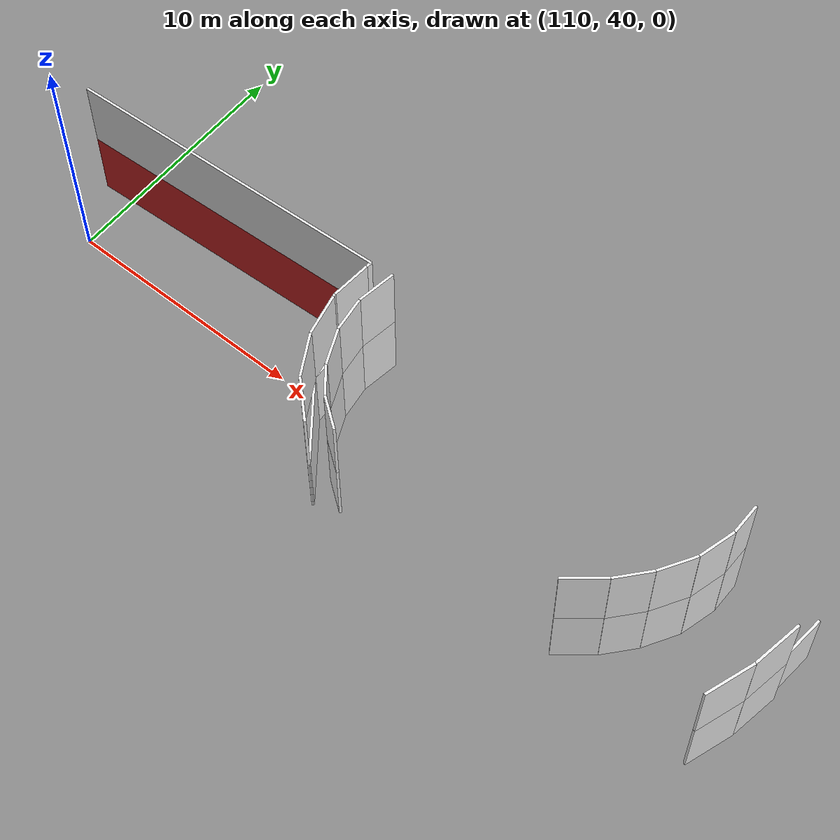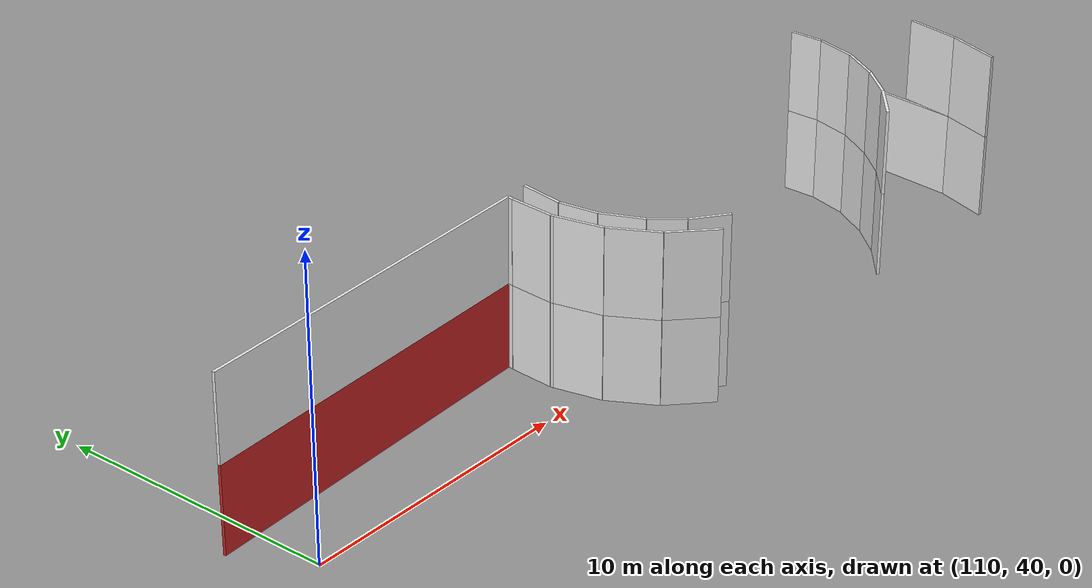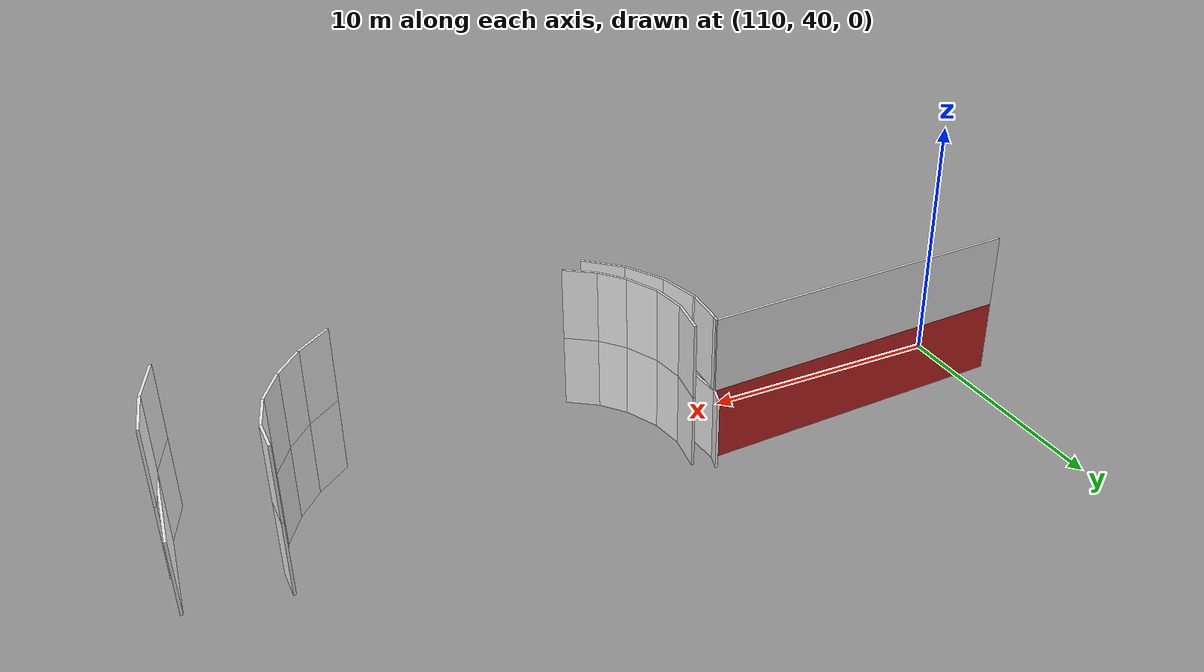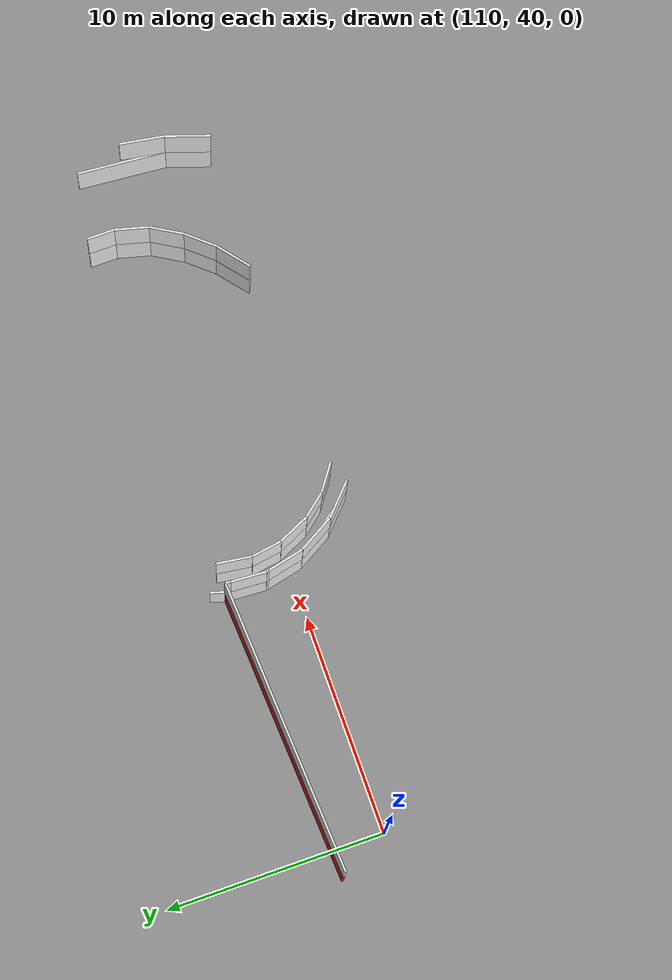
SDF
<sdf version="1.6">
 <world name="default">
  <model name="wall_115.3_42.8_1.5">
   <static>true</static>
   <pose>115.2949999999837 42.75499999988824 1.5 0 0 0.0504469889047384</pose>
   <link name="link">
    <visual name="visual">
     <geometry><box><size>13.286903326222951 0.1 3</size></box></geometry>
     <material>
      <script><uri>file://media/materials/scripts/gazebo.material</uri><name>Gazebo/Red</name></script>
     </material>
    </visual>
    <collision name="collision"><geometry><box><size>13.286903326222951 0.1 3</size></box></geometry></collision>
   </link>
  </model>
  <model name="wall_122.7_42.4_1.5">
   <static>true</static>
   <pose>122.73000000001048 42.40999999991618 1.5 0 0 -1.710898051205598</pose>
   <link name="link">
    <visual name="visual">
     <geometry><box><size>1.5754364475241969 0.1 3</size></box></geometry>
     <material>
      <script><uri>file://media/materials/scripts/gazebo.material</uri><name>Gazebo/White</name></script>
     </material>
    </visual>
    <collision name="collision"><geometry><box><size>1.5754364475241969 0.1 3</size></box></geometry></collision>
   </link>
  </model>
  <model name="wall_122.7_40.9_1.5">
   <static>true</static>
   <pose>122.72000000000116 40.94499999983236 1.5 0 0 -1.4258349304067353</pose>
   <link name="link">
    <visual name="visual">
     <geometry><box><size>1.384521578131188 0.1 3</size></box></geometry>
     <material>
      <script><uri>file://media/materials/scripts/gazebo.material</uri><name>Gazebo/White</name></script>
     </material>
    </visual>
    <collision name="collision"><geometry><box><size>1.384521578131188 0.1 3</size></box></geometry></collision>
   </link>
  </model>
  <model name="wall_123.1_39.6_1.5">
   <static>true</static>
   <pose>123.13000000000466 39.574999999953434 1.5 0 0 -1.1458199052710913</pose>
   <link name="link">
    <visual name="visual">
     <geometry><box><size>1.5037619489216145 0.1 3</size></box></geometry>
     <material>
      <script><uri>file://media/materials/scripts/gazebo.material</uri><name>Gazebo/White</name></script>
     </material>
    </visual>
    <collision name="collision"><geometry><box><size>1.5037619489216145 0.1 3</size></box></geometry></collision>
   </link>
  </model>
  <model name="wall_123.8_38.4_1.5">
   <static>true</static>
   <pose>123.8299999999872 38.41000000014901 1.5 0 0 -0.8884797719201485</pose>
   <link name="link">
    <visual name="visual">
     <geometry><box><size>1.2369316876372989 0.1 3</size></box></geometry>
     <material>
      <script><uri>file://media/materials/scripts/gazebo.material</uri><name>Gazebo/White</name></script>
     </material>
    </visual>
    <collision name="collision"><geometry><box><size>1.2369316876372989 0.1 3</size></box></geometry></collision>
   </link>
  </model>
  <model name="wall_124.8_37.5_1.5">
   <static>true</static>
   <pose>124.77999999999884 37.52000000001863 1.5 0 0 -0.6319742419690464</pose>
   <link name="link">
    <visual name="visual">
     <geometry><box><size>1.388092216176113 0.1 3</size></box></geometry>
     <material>
      <script><uri>file://media/materials/scripts/gazebo.material</uri><name>Gazebo/White</name></script>
     </material>
    </visual>
    <collision name="collision"><geometry><box><size>1.388092216176113 0.1 3</size></box></geometry></collision>
   </link>
  </model>
  <model name="wall_135.2_38.0_1.5">
   <static>true</static>
   <pose>135.15499999999884 38.03499999991618 1.5 0 0 0.6848975642669308</pose>
   <link name="link">
    <visual name="visual">
     <geometry><box><size>1.6914490827793647 0.1 3</size></box></geometry>
     <material>
      <script><uri>file://media/materials/scripts/gazebo.material</uri><name>Gazebo/White</name></script>
     </material>
    </visual>
    <collision name="collision"><geometry><box><size>1.6914490827793647 0.1 3</size></box></geometry></collision>
   </link>
  </model>
  <model name="wall_136.3_39.1_1.5">
   <static>true</static>
   <pose>136.2950000000128 39.13500000000931 1.5 0 0 0.8614417228159299</pose>
   <link name="link">
    <visual name="visual">
     <geometry><box><size>1.4892279882068225 0.1 3</size></box></geometry>
     <material>
      <script><uri>file://media/materials/scripts/gazebo.material</uri><name>Gazebo/White</name></script>
     </material>
    </visual>
    <collision name="collision"><geometry><box><size>1.4892279882068225 0.1 3</size></box></geometry></collision>
   </link>
  </model>
  <model name="wall_137.2_40.4_1.5">
   <static>true</static>
   <pose>137.1700000000128 40.360000000102445 1.5 0 0 1.0370881351170083</pose>
   <link name="link">
    <visual name="visual">
     <geometry><box><size>1.5332318805419543 0.1 3</size></box></geometry>
     <material>
      <script><uri>file://media/materials/scripts/gazebo.material</uri><name>Gazebo/White</name></script>
     </material>
    </visual>
    <collision name="collision"><geometry><box><size>1.5332318805419543 0.1 3</size></box></geometry></collision>
   </link>
  </model>
  <model name="wall_137.8_41.7_1.5">
   <static>true</static>
   <pose>137.75500000000466 41.74500000011176 1.5 0 0 1.3080489362155228</pose>
   <link name="link">
    <visual name="visual">
     <geometry><box><size>1.501532550613227 0.1 3</size></box></geometry>
     <material>
      <script><uri>file://media/materials/scripts/gazebo.material</uri><name>Gazebo/White</name></script>
     </material>
    </visual>
    <collision name="collision"><geometry><box><size>1.501532550613227 0.1 3</size></box></geometry></collision>
   </link>
  </model>
  <model name="wall_138.0_43.1_1.5">
   <static>true</static>
   <pose>137.95000000001164 43.08500000019558 1.5 0 0 1.5707963267948966</pose>
   <link name="link">
    <visual name="visual">
     <geometry><box><size>1.2299999999813735 0.1 3</size></box></geometry>
     <material>
      <script><uri>file://media/materials/scripts/gazebo.material</uri><name>Gazebo/White</name></script>
     </material>
    </visual>
    <collision name="collision"><geometry><box><size>1.2299999999813735 0.1 3</size></box></geometry></collision>
   </link>
  </model>
  <model name="wall_122.0_43.4_1.5">
   <static>true</static>
   <pose>122.02499999999418 43.40999999991618 1.5 0 0 -1.8593836886367348</pose>
   <link name="link">
    <visual name="visual">
     <geometry><box><size>0.6676076693446367 0.1 3</size></box></geometry>
     <material>
      <script><uri>file://media/materials/scripts/gazebo.material</uri><name>Gazebo/White</name></script>
     </material>
    </visual>
    <collision name="collision"><geometry><box><size>0.6676076693446367 0.1 3</size></box></geometry></collision>
   </link>
  </model>
  <model name="wall_121.9_43.0_1.5">
   <static>true</static>
   <pose>121.91500000000815 42.97999999998137 1.5 0 0 -1.706324040804011</pose>
   <link name="link">
    <visual name="visual">
     <geometry><box><size>0.22203603284927648 0.1 3</size></box></geometry>
     <material>
      <script><uri>file://media/materials/scripts/gazebo.material</uri><name>Gazebo/White</name></script>
     </material>
    </visual>
    <collision name="collision"><geometry><box><size>0.22203603284927648 0.1 3</size></box></geometry></collision>
   </link>
  </model>
  <model name="wall_121.9_42.1_1.5">
   <static>true</static>
   <pose>121.85000000000582 42.07000000006519 1.5 0 0 -1.6332151368089731</pose>
   <link name="link">
    <visual name="visual">
     <geometry><box><size>1.6031219542832693 0.1 3</size></box></geometry>
     <material>
      <script><uri>file://media/materials/scripts/gazebo.material</uri><name>Gazebo/White</name></script>
     </material>
    </visual>
    <collision name="collision"><geometry><box><size>1.6031219542832693 0.1 3</size></box></geometry></collision>
   </link>
  </model>
  <model name="wall_121.8_41.2_1.5">
   <static>true</static>
   <pose>121.80999999999767 41.21999999997206 1.5 0 0 -1.373400766945016</pose>
   <link name="link">
    <visual name="visual">
     <geometry><box><size>0.10198039036683233 0.1 3</size></box></geometry>
     <material>
      <script><uri>file://media/materials/scripts/gazebo.material</uri><name>Gazebo/White</name></script>
     </material>
    </visual>
    <collision name="collision"><geometry><box><size>0.10198039036683233 0.1 3</size></box></geometry></collision>
   </link>
  </model>
  <model name="wall_122.0_40.3_1.5">
   <static>true</static>
   <pose>122.00500000000466 40.34499999997206 1.5 0 0 -1.350203072831387</pose>
   <link name="link">
    <visual name="visual">
     <geometry><box><size>1.6909760494132429 0.1 3</size></box></geometry>
     <material>
      <script><uri>file://media/materials/scripts/gazebo.material</uri><name>Gazebo/White</name></script>
     </material>
    </visual>
    <collision name="collision"><geometry><box><size>1.6909760494132429 0.1 3</size></box></geometry></collision>
   </link>
  </model>
  <model name="wall_122.6_38.7_1.5">
   <static>true</static>
   <pose>122.63000000000466 38.73999999999069 1.5 0 0 -1.057190322085212</pose>
   <link name="link">
    <visual name="visual">
     <geometry><box><size>1.7910890542300064 0.1 3</size></box></geometry>
     <material>
      <script><uri>file://media/materials/scripts/gazebo.material</uri><name>Gazebo/White</name></script>
     </material>
    </visual>
    <collision name="collision"><geometry><box><size>1.7910890542300064 0.1 3</size></box></geometry></collision>
   </link>
  </model>
  <model name="wall_123.7_37.3_1.5">
   <static>true</static>
   <pose>123.72000000000116 37.34000000008382 1.5 0 0 -0.7617805082994406</pose>
   <link name="link">
    <visual name="visual">
     <geometry><box><size>1.7965522534480356 0.1 3</size></box></geometry>
     <material>
      <script><uri>file://media/materials/scripts/gazebo.material</uri><name>Gazebo/White</name></script>
     </material>
    </visual>
    <collision name="collision"><geometry><box><size>1.7965522534480356 0.1 3</size></box></geometry></collision>
   </link>
  </model>
  <model name="wall_140.8_38.1_1.5">
   <static>true</static>
   <pose>140.77999999999884 38.13500000000931 1.5 0 0 1.244291450100456</pose>
   <link name="link">
    <visual name="visual">
     <geometry><box><size>1.9954197554490212 0.1 3</size></box></geometry>
     <material>
      <script><uri>file://media/materials/scripts/gazebo.material</uri><name>Gazebo/White</name></script>
     </material>
    </visual>
    <collision name="collision"><geometry><box><size>1.9954197554490212 0.1 3</size></box></geometry></collision>
   </link>
  </model>
  <model name="wall_141.3_40.1_1.5">
   <static>true</static>
   <pose>141.26499999998487 40.06000000005588 1.5 0 0 1.4039933911592954</pose>
   <link name="link">
    <visual name="visual">
     <geometry><box><size>1.9875864760721043 0.1 3</size></box></geometry>
     <material>
      <script><uri>file://media/materials/scripts/gazebo.material</uri><name>Gazebo/White</name></script>
     </material>
    </visual>
    <collision name="collision"><geometry><box><size>1.9875864760721043 0.1 3</size></box></geometry></collision>
   </link>
  </model>
  <model name="wall_141.3_41.1_1.5">
   <static>true</static>
   <pose>141.27499999999418 41.05499999993481 1.5 0 0 -1.659173112954737</pose>
   <link name="link">
    <visual name="visual">
     <geometry><box><size>3.9654760115044465 0.1 3</size></box></geometry>
     <material>
      <script><uri>file://media/materials/scripts/gazebo.material</uri><name>Gazebo/White</name></script>
     </material>
    </visual>
    <collision name="collision"><geometry><box><size>3.9654760115044465 0.1 3</size></box></geometry></collision>
   </link>
  </model>
  <model name="wall_123.3_38.1_1.5">
   <static>true</static>
   <pose>123.27999999999884 38.12000000011176 1.5 0 0 2.232333811009223</pose>
   <link name="link">
    <visual name="visual">
     <geometry><box><size>3.548577179508213 0.1 3</size></box></geometry>
     <material>
      <script><uri>file://media/materials/scripts/gazebo.material</uri><name>Gazebo/White</name></script>
     </material>
    </visual>
    <collision name="collision"><geometry><box><size>3.548577179508213 0.1 3</size></box></geometry></collision>
   </link>
  </model>
  <model name="wall_122.1_41.3_1.5">
   <static>true</static>
   <pose>122.05999999999767 41.30499999993481 1.5 0 0 1.6434971027864747</pose>
   <link name="link">
    <visual name="visual">
     <geometry><box><size>3.5794552656525696 0.1 3</size></box></geometry>
     <material>
      <script><uri>file://media/materials/scripts/gazebo.material</uri><name>Gazebo/White</name></script>
     </material>
    </visual>
    <collision name="collision"><geometry><box><size>3.5794552656525696 0.1 3</size></box></geometry></collision>
   </link>
  </model>
  <model name="wall_122.7_42.4_4.5">
   <static>true</static>
   <pose>122.73000000001048 42.40999999991618 4.5 0 0 -1.710898051205598</pose>
   <link name="link">
    <visual name="visual">
     <geometry><box><size>1.5754364475241969 0.1 3</size></box></geometry>
     <material>
      <script><uri>file://media/materials/scripts/gazebo.material</uri><name>Gazebo/White</name></script>
     </material>
    </visual>
    <collision name="collision"><geometry><box><size>1.5754364475241969 0.1 3</size></box></geometry></collision>
   </link>
  </model>
  <model name="wall_122.7_40.9_4.5">
   <static>true</static>
   <pose>122.72000000000116 40.94499999983236 4.5 0 0 -1.4258349304067353</pose>
   <link name="link">
    <visual name="visual">
     <geometry><box><size>1.384521578131188 0.1 3</size></box></geometry>
     <material>
      <script><uri>file://media/materials/scripts/gazebo.material</uri><name>Gazebo/White</name></script>
     </material>
    </visual>
    <collision name="collision"><geometry><box><size>1.384521578131188 0.1 3</size></box></geometry></collision>
   </link>
  </model>
  <model name="wall_123.1_39.6_4.5">
   <static>true</static>
   <pose>123.13000000000466 39.574999999953434 4.5 0 0 -1.1458199052710913</pose>
   <link name="link">
    <visual name="visual">
     <geometry><box><size>1.5037619489216145 0.1 3</size></box></geometry>
     <material>
      <script><uri>file://media/materials/scripts/gazebo.material</uri><name>Gazebo/White</name></script>
     </material>
    </visual>
    <collision name="collision"><geometry><box><size>1.5037619489216145 0.1 3</size></box></geometry></collision>
   </link>
  </model>
  <model name="wall_123.8_38.4_4.5">
   <static>true</static>
   <pose>123.8299999999872 38.41000000014901 4.5 0 0 -0.8884797719201485</pose>
   <link name="link">
    <visual name="visual">
     <geometry><box><size>1.2369316876372989 0.1 3</size></box></geometry>
     <material>
      <script><uri>file://media/materials/scripts/gazebo.material</uri><name>Gazebo/White</name></script>
     </material>
    </visual>
    <collision name="collision"><geometry><box><size>1.2369316876372989 0.1 3</size></box></geometry></collision>
   </link>
  </model>
  <model name="wall_124.8_37.5_4.5">
   <static>true</static>
   <pose>124.77999999999884 37.52000000001863 4.5 0 0 -0.6319742419690464</pose>
   <link name="link">
    <visual name="visual">
     <geometry><box><size>1.388092216176113 0.1 3</size></box></geometry>
     <material>
      <script><uri>file://media/materials/scripts/gazebo.material</uri><name>Gazebo/White</name></script>
     </material>
    </visual>
    <collision name="collision"><geometry><box><size>1.388092216176113 0.1 3</size></box></geometry></collision>
   </link>
  </model>
  <model name="wall_135.2_38.0_4.5">
   <static>true</static>
   <pose>135.15499999999884 38.03499999991618 4.5 0 0 0.6848975642669308</pose>
   <link name="link">
    <visual name="visual">
     <geometry><box><size>1.6914490827793647 0.1 3</size></box></geometry>
     <material>
      <script><uri>file://media/materials/scripts/gazebo.material</uri><name>Gazebo/White</name></script>
     </material>
    </visual>
    <collision name="collision"><geometry><box><size>1.6914490827793647 0.1 3</size></box></geometry></collision>
   </link>
  </model>
  <model name="wall_136.3_39.1_4.5">
   <static>true</static>
   <pose>136.2950000000128 39.13500000000931 4.5 0 0 0.8614417228159299</pose>
   <link name="link">
    <visual name="visual">
     <geometry><box><size>1.4892279882068225 0.1 3</size></box></geometry>
     <material>
      <script><uri>file://media/materials/scripts/gazebo.material</uri><name>Gazebo/White</name></script>
     </material>
    </visual>
    <collision name="collision"><geometry><box><size>1.4892279882068225 0.1 3</size></box></geometry></collision>
   </link>
  </model>
  <model name="wall_137.2_40.4_4.5">
   <static>true</static>
   <pose>137.1700000000128 40.360000000102445 4.5 0 0 1.0370881351170083</pose>
   <link name="link">
    <visual name="visual">
     <geometry><box><size>1.5332318805419543 0.1 3</size></box></geometry>
     <material>
      <script><uri>file://media/materials/scripts/gazebo.material</uri><name>Gazebo/White</name></script>
     </material>
    </visual>
    <collision name="collision"><geometry><box><size>1.5332318805419543 0.1 3</size></box></geometry></collision>
   </link>
  </model>
  <model name="wall_137.8_41.7_4.5">
   <static>true</static>
   <pose>137.75500000000466 41.74500000011176 4.5 0 0 1.3080489362155228</pose>
   <link name="link">
    <visual name="visual">
     <geometry><box><size>1.501532550613227 0.1 3</size></box></geometry>
     <material>
      <script><uri>file://media/materials/scripts/gazebo.material</uri><name>Gazebo/White</name></script>
     </material>
    </visual>
    <collision name="collision"><geometry><box><size>1.501532550613227 0.1 3</size></box></geometry></collision>
   </link>
  </model>
  <model name="wall_138.0_43.1_4.5">
   <static>true</static>
   <pose>137.95000000001164 43.08500000019558 4.5 0 0 1.5707963267948966</pose>
   <link name="link">
    <visual name="visual">
     <geometry><box><size>1.2299999999813735 0.1 3</size></box></geometry>
     <material>
      <script><uri>file://media/materials/scripts/gazebo.material</uri><name>Gazebo/White</name></script>
     </material>
    </visual>
    <collision name="collision"><geometry><box><size>1.2299999999813735 0.1 3</size></box></geometry></collision>
   </link>
  </model>
  <model name="wall_115.3_42.8_4.5">
   <static>true</static>
   <pose>115.2949999999837 42.75499999988824 4.5 0 0 -3.091145664685055</pose>
   <link name="link">
    <visual name="visual">
     <geometry><box><size>13.286903326222951 0.1 3</size></box></geometry>
     <material>
      <script><uri>file://media/materials/scripts/gazebo.material</uri><name>Gazebo/White</name></script>
     </material>
    </visual>
    <collision name="collision"><geometry><box><size>13.286903326222951 0.1 3</size></box></geometry></collision>
   </link>
  </model>
  <model name="wall_121.9_43.0_4.5">
   <static>true</static>
   <pose>121.91500000000815 42.97999999998137 4.5 0 0 -1.706324040804011</pose>
   <link name="link">
    <visual name="visual">
     <geometry><box><size>0.22203603284927648 0.1 3</size></box></geometry>
     <material>
      <script><uri>file://media/materials/scripts/gazebo.material</uri><name>Gazebo/White</name></script>
     </material>
    </visual>
    <collision name="collision"><geometry><box><size>0.22203603284927648 0.1 3</size></box></geometry></collision>
   </link>
  </model>
  <model name="wall_121.9_42.1_4.5">
   <static>true</static>
   <pose>121.85000000000582 42.07000000006519 4.5 0 0 -1.6332151368089731</pose>
   <link name="link">
    <visual name="visual">
     <geometry><box><size>1.6031219542832693 0.1 3</size></box></geometry>
     <material>
      <script><uri>file://media/materials/scripts/gazebo.material</uri><name>Gazebo/White</name></script>
     </material>
    </visual>
    <collision name="collision"><geometry><box><size>1.6031219542832693 0.1 3</size></box></geometry></collision>
   </link>
  </model>
  <model name="wall_121.8_41.2_4.5">
   <static>true</static>
   <pose>121.80999999999767 41.21999999997206 4.5 0 0 -1.373400766945016</pose>
   <link name="link">
    <visual name="visual">
     <geometry><box><size>0.10198039036683233 0.1 3</size></box></geometry>
     <material>
      <script><uri>file://media/materials/scripts/gazebo.material</uri><name>Gazebo/White</name></script>
     </material>
    </visual>
    <collision name="collision"><geometry><box><size>0.10198039036683233 0.1 3</size></box></geometry></collision>
   </link>
  </model>
  <model name="wall_122.0_40.3_4.5">
   <static>true</static>
   <pose>122.00500000000466 40.34499999997206 4.5 0 0 -1.350203072831387</pose>
   <link name="link">
    <visual name="visual">
     <geometry><box><size>1.6909760494132429 0.1 3</size></box></geometry>
     <material>
      <script><uri>file://media/materials/scripts/gazebo.material</uri><name>Gazebo/White</name></script>
     </material>
    </visual>
    <collision name="collision"><geometry><box><size>1.6909760494132429 0.1 3</size></box></geometry></collision>
   </link>
  </model>
  <model name="wall_122.6_38.7_4.5">
   <static>true</static>
   <pose>122.63000000000466 38.73999999999069 4.5 0 0 -1.057190322085212</pose>
   <link name="link">
    <visual name="visual">
     <geometry><box><size>1.7910890542300064 0.1 3</size></box></geometry>
     <material>
      <script><uri>file://media/materials/scripts/gazebo.material</uri><name>Gazebo/White</name></script>
     </material>
    </visual>
    <collision name="collision"><geometry><box><size>1.7910890542300064 0.1 3</size></box></geometry></collision>
   </link>
  </model>
  <model name="wall_123.7_37.3_4.5">
   <static>true</static>
   <pose>123.72000000000116 37.34000000008382 4.5 0 0 -0.7617805082994406</pose>
   <link name="link">
    <visual name="visual">
     <geometry><box><size>1.7965522534480356 0.1 3</size></box></geometry>
     <material>
      <script><uri>file://media/materials/scripts/gazebo.material</uri><name>Gazebo/White</name></script>
     </material>
    </visual>
    <collision name="collision"><geometry><box><size>1.7965522534480356 0.1 3</size></box></geometry></collision>
   </link>
  </model>
  <model name="wall_140.8_38.1_4.5">
   <static>true</static>
   <pose>140.77999999999884 38.13500000000931 4.5 0 0 1.244291450100456</pose>
   <link name="link">
    <visual name="visual">
     <geometry><box><size>1.9954197554490212 0.1 3</size></box></geometry>
     <material>
      <script><uri>file://media/materials/scripts/gazebo.material</uri><name>Gazebo/White</name></script>
     </material>
    </visual>
    <collision name="collision"><geometry><box><size>1.9954197554490212 0.1 3</size></box></geometry></collision>
   </link>
  </model>
  <model name="wall_141.3_40.1_4.5">
   <static>true</static>
   <pose>141.26499999998487 40.06000000005588 4.5 0 0 1.4039933911592954</pose>
   <link name="link">
    <visual name="visual">
     <geometry><box><size>1.9875864760721043 0.1 3</size></box></geometry>
     <material>
      <script><uri>file://media/materials/scripts/gazebo.material</uri><name>Gazebo/White</name></script>
     </material>
    </visual>
    <collision name="collision"><geometry><box><size>1.9875864760721043 0.1 3</size></box></geometry></collision>
   </link>
  </model>
 </world>
</sdf>
